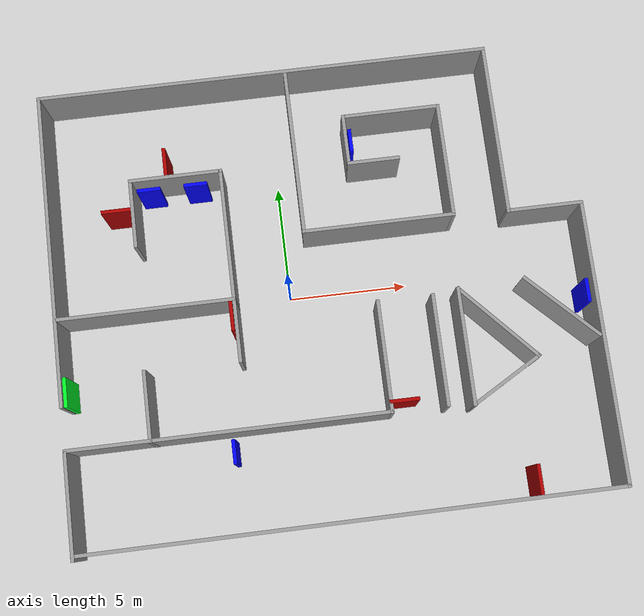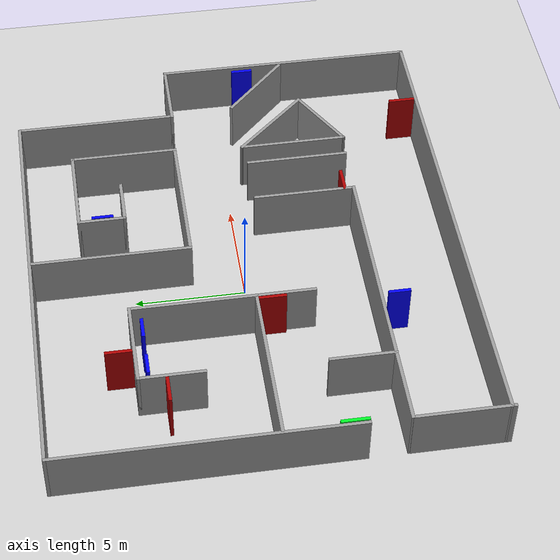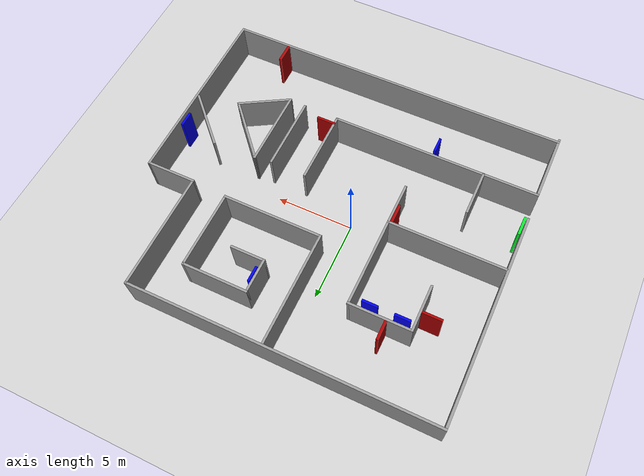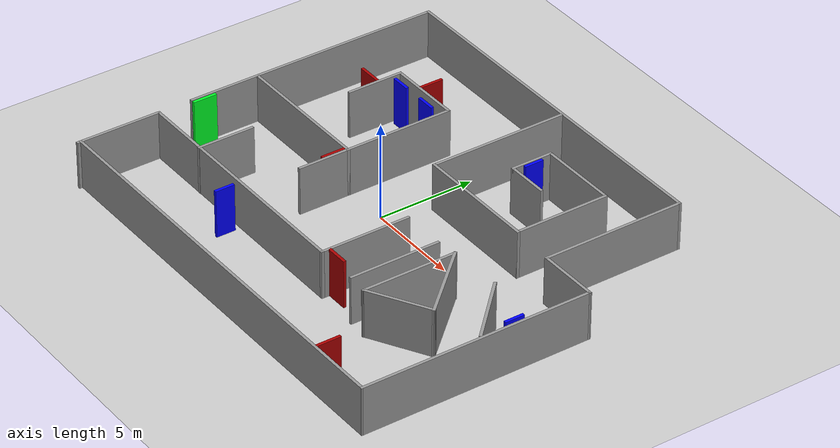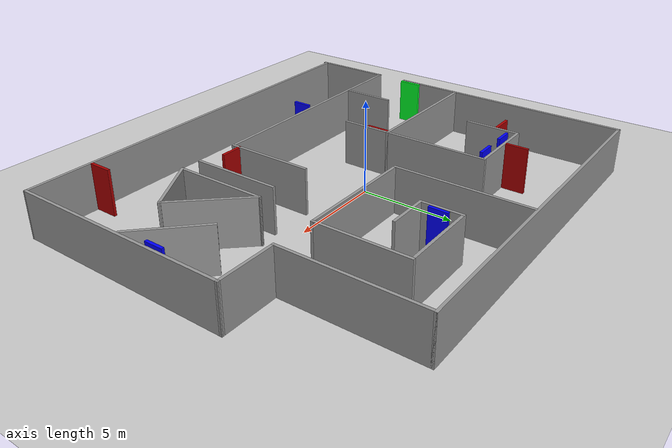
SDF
<sdf version="1.6">
 <world name="default">
  <light name="sun" type="directional">
   <pose>0 0 10 0 -0 0</pose>
   <diffuse>0.8 0.8 0.8 1</diffuse>
   <specular>0.1 0.1 0.1 1</specular>
   <attenuation>
    <range>1000</range>
    <constant>0.9</constant>
    <linear>0.01</linear>
    <quadratic>0.001</quadratic>
   </attenuation>
   <direction>-0.5 0.5 -1</direction>
  </light>
  <model name="ground_plane">
   <static>1</static>
   <link name="link">
    <collision name="collision">
     <geometry><plane><normal>0 0 1</normal><size>100 100</size></plane></geometry>
     <surface><friction><ode><mu>100</mu><mu2>50</mu2></ode></friction></surface>
    </collision>
    <visual name="visual">
     <cast_shadows>0</cast_shadows>
     <geometry><plane><normal>0 0 1</normal><size>100 100</size></plane></geometry>
     <material>
      <script><uri>file://media/materials/scripts/gazebo.material</uri><name>Gazebo/Grey</name></script>
     </material>
    </visual>
   </link>
  </model>
  <gravity>0 0 -9.8</gravity>
  <magnetic_field>6e-06 2.3e-05 -4.2e-05</magnetic_field>
  <atmosphere type="adiabatic"/>
  <physics name="default_physics" default="0" type="ode">
   <max_step_size>0.001</max_step_size>
   <real_time_factor>1</real_time_factor>
   <real_time_update_rate>1000</real_time_update_rate>
  </physics>
  <scene><ambient>0.4 0.4 0.4 1</ambient><background>0.7 0.7 0.7 1</background><shadows>1</shadows></scene>
  <spherical_coordinates>
   <surface_model>EARTH_WGS84</surface_model>
   <latitude_deg>0</latitude_deg>
   <longitude_deg>0</longitude_deg>
   <elevation>0</elevation>
   <heading_deg>0</heading_deg>
  </spherical_coordinates>
  <model name="202005_GRobotics_maze">
   <pose>1.43613 -0.11652 0 0 0 -1.57</pose>
   <link name="Wall_60">
    <collision name="Wall_60_Collision">
     <geometry><box><size>13.5 0.15 2.5</size></box></geometry>
     <pose>0 0 1.25 0 -0 0</pose>
    </collision>
    <visual name="Wall_60_Visual">
     <pose>0 0 1.25 0 -0 0</pose>
     <geometry><box><size>13.5 0.15 2.5</size></box></geometry>
     <material>
      <script><uri>file://media/materials/scripts/gazebo.material</uri><name>Gazebo/Grey</name></script>
      <ambient>1 1 1 1</ambient>
     </material>
    </visual>
    <pose>-3 -11.2249 0 0 -0 3.14159</pose>
   </link>
   <link name="Wall_61">
    <collision name="Wall_61_Collision">
     <geometry><box><size>4.4 0.15 2.5</size></box></geometry>
     <pose>0 0 1.25 0 -0 0</pose>
    </collision>
    <visual name="Wall_61_Visual">
     <pose>0 0 1.25 0 -0 0</pose>
     <geometry><box><size>4.4 0.15 2.5</size></box></geometry>
     <material>
      <script><uri>file://media/materials/scripts/gazebo.material</uri><name>Gazebo/Grey</name></script>
      <ambient>1 1 1 1</ambient>
     </material>
    </visual>
    <pose>7.7 -11.2249 0 0 -0 3.14159</pose>
   </link>
   <link name="Wall_11">
    <collision name="Wall_11_Collision">
     <geometry><box><size>6.5 0.15 2.5</size></box></geometry>
     <pose>0 0 1.25 0 -0 0</pose>
    </collision>
    <visual name="Wall_11_Visual">
     <pose>0 0 1.25 0 -0 0</pose>
     <geometry><box><size>6.5 0.15 2.5</size></box></geometry>
     <material>
      <script><uri>file://media/materials/scripts/gazebo.material</uri><name>Gazebo/Grey</name></script>
      <ambient>1 1 1 1</ambient>
     </material>
    </visual>
    <pose>-2.45813 2.62694 0 0 -0 1.5708</pose>
   </link>
   <link name="Wall_12">
    <collision name="Wall_12_Collision">
     <geometry><box><size>5 0.15 2.5</size></box></geometry>
     <pose>0 0 1.25 0 -0 0</pose>
    </collision>
    <visual name="Wall_12_Visual">
     <pose>0 0 1.25 0 -0 0</pose>
     <geometry><box><size>5 0.15 2.5</size></box></geometry>
     <material>
      <script><uri>file://media/materials/scripts/gazebo.material</uri><name>Gazebo/Grey</name></script>
      <ambient>1 1 1 1</ambient>
     </material>
    </visual>
    <pose>-4.88314 5.80194 0 0 -0 3.14159</pose>
   </link>
   <link name="Wall_14">
    <collision name="Wall_14_Collision">
     <geometry><box><size>4.25 0.15 2.5</size></box></geometry>
     <pose>0 0 1.25 0 -0 0</pose>
    </collision>
    <visual name="Wall_14_Visual">
     <pose>0 0 1.25 0 -0 0</pose>
     <geometry><box><size>4.25 0.15 2.5</size></box></geometry>
     <material>
      <script><uri>file://media/materials/scripts/gazebo.material</uri><name>Gazebo/Grey</name></script>
      <ambient>1 1 1 1</ambient>
     </material>
    </visual>
    <pose>-7.30814 3.75194 0 0 0 -1.5708</pose>
   </link>
   <link name="Wall_15">
    <collision name="Wall_15_Collision">
     <geometry><box><size>2.25 0.15 2.5</size></box></geometry>
     <pose>0 0 1.25 0 -0 0</pose>
    </collision>
    <visual name="Wall_15_Visual">
     <pose>0 0 1.25 0 -0 0</pose>
     <geometry><box><size>2.25 0.15 2.5</size></box></geometry>
     <material>
      <script><uri>file://media/materials/scripts/gazebo.material</uri><name>Gazebo/Grey</name></script>
      <ambient>1 1 1 1</ambient>
     </material>
    </visual>
    <pose>-6.25814 1.70194 0 0 -0 0</pose>
   </link>
   <link name="Wall_16">
    <collision name="Wall_16_Collision">
     <geometry><box><size>2.25 0.15 2.5</size></box></geometry>
     <pose>0 0 1.25 0 -0 0</pose>
    </collision>
    <visual name="Wall_16_Visual">
     <pose>0 0 1.25 0 -0 0</pose>
     <geometry><box><size>2.25 0.15 2.5</size></box></geometry>
     <material>
      <script><uri>file://media/materials/scripts/gazebo.material</uri><name>Gazebo/Grey</name></script>
      <ambient>1 1 1 1</ambient>
     </material>
    </visual>
    <pose>-5.20814 2.75194 0 0 -0 1.5708</pose>
   </link>
   <link name="Wall_18">
    <collision name="Wall_18_Collision">
     <geometry><box><size>7.5 0.15 2.5</size></box></geometry>
     <pose>0 0 1.25 0 -0 0</pose>
    </collision>
    <visual name="Wall_18_Visual">
     <pose>0 0 1.25 0 -0 0</pose>
     <geometry><box><size>7.5 0.15 2.5</size></box></geometry>
     <material>
      <script><uri>file://media/materials/scripts/gazebo.material</uri><name>Gazebo/Grey</name></script>
      <ambient>1 1 1 1</ambient>
     </material>
    </visual>
    <pose>0.07045 -7.45271 0 0 -0 1.5708</pose>
   </link>
   <link name="Wall_19">
    <collision name="Wall_19_Collision">
     <geometry><box><size>5.75 0.15 2.5</size></box></geometry>
     <pose>0 0 1.25 0 -0 0</pose>
    </collision>
    <visual name="Wall_19_Visual">
     <pose>0 0 1.25 0 -0 0</pose>
     <geometry><box><size>5.75 0.15 2.5</size></box></geometry>
     <material>
      <script><uri>file://media/materials/scripts/gazebo.material</uri><name>Gazebo/Grey</name></script>
      <ambient>1 1 1 1</ambient>
     </material>
    </visual>
    <pose>-2.72955 -3.77771 0 0 -0 3.14159</pose>
   </link>
   <link name="Wall_20">
    <collision name="Wall_20_Collision">
     <geometry><box><size>4 0.15 2.5</size></box></geometry>
     <pose>0 0 1.25 0 -0 0</pose>
    </collision>
    <visual name="Wall_20_Visual">
     <pose>0 0 1.25 0 -0 0</pose>
     <geometry><box><size>4 0.15 2.5</size></box></geometry>
     <material>
      <script><uri>file://media/materials/scripts/gazebo.material</uri><name>Gazebo/Grey</name></script>
      <ambient>1 1 1 1</ambient>
     </material>
    </visual>
    <pose>-5.52955 -5.70271 0 0 0 -1.5708</pose>
   </link>
   <link name="Wall_21">
    <collision name="Wall_21_Collision">
     <geometry><box><size>3 0.15 2.5</size></box></geometry>
     <pose>0 0 1.25 0 -0 0</pose>
    </collision>
    <visual name="Wall_21_Visual">
     <pose>0 0 1.25 0 -0 0</pose>
     <geometry><box><size>3 0.15 2.5</size></box></geometry>
     <material>
      <script><uri>file://media/materials/scripts/gazebo.material</uri><name>Gazebo/Grey</name></script>
      <ambient>1 1 1 1</ambient>
     </material>
    </visual>
    <pose>-4.10455 -7.62771 0 0 -0 0</pose>
   </link>
   <link name="Wall_23">
    <collision name="Wall_23_Collision">
     <geometry><box><size>13.5 0.15 2.5</size></box></geometry>
     <pose>0 0 1.25 0 -0 0</pose>
    </collision>
    <visual name="Wall_23_Visual">
     <pose>0 0 1.25 0 -0 0</pose>
     <geometry><box><size>13.5 0.15 2.5</size></box></geometry>
     <material>
      <script><uri>file://media/materials/scripts/gazebo.material</uri><name>Gazebo/Grey</name></script>
      <ambient>1 1 1 1</ambient>
     </material>
    </visual>
    <pose>5.4915 -4.53362 0 0 -0 1.5708</pose>
   </link>
   <link name="Wall_25">
    <collision name="Wall_25_Collision">
     <geometry><box><size>2.75 0.15 2.5</size></box></geometry>
     <pose>0 0 1.25 0 -0 0</pose>
    </collision>
    <visual name="Wall_25_Visual">
     <pose>0 0 1.25 0 -0 0</pose>
     <geometry><box><size>2.75 0.15 2.5</size></box></geometry>
     <material>
      <script><uri>file://media/materials/scripts/gazebo.material</uri><name>Gazebo/Grey</name></script>
      <ambient>1 1 1 1</ambient>
     </material>
    </visual>
    <pose>1.37045 -3.77771 0 0 -0 0</pose>
   </link>
   <link name="Wall_27">
    <collision name="Wall_27_Collision">
     <geometry><box><size>3 0.15 2.5</size></box></geometry>
     <pose>0 0 1.25 0 -0 0</pose>
    </collision>
    <visual name="Wall_27_Visual">
     <pose>0 0 1.25 0 -0 0</pose>
     <geometry><box><size>3 0.15 2.5</size></box></geometry>
     <material>
      <script><uri>file://media/materials/scripts/gazebo.material</uri><name>Gazebo/Grey</name></script>
      <ambient>1 1 1 1</ambient>
     </material>
    </visual>
    <pose>4.08027 -7.75634 0 0 -0 3.14159</pose>
   </link>
   <link name="Wall_3">
    <collision name="Wall_3_Collision">
     <geometry><box><size>22.5761 0.15 2.5</size></box></geometry>
     <pose>0 0 1.25 0 -0 0</pose>
    </collision>
    <visual name="Wall_3_Visual">
     <pose>0 0 1.25 0 -0 0</pose>
     <geometry><box><size>22.5761 0.15 2.5</size></box></geometry>
     <material>
      <script><uri>file://media/materials/scripts/gazebo.material</uri><name>Gazebo/Grey</name></script>
      <ambient>1 1 1 1</ambient>
     </material>
    </visual>
    <pose>9.63418 -0.011964 0 0 -0 1.57442</pose>
   </link>
   <link name="Wall_36">
    <collision name="Wall_36_Collision">
     <geometry><box><size>4.75 0.15 2.5</size></box></geometry>
     <pose>0 0 1.25 0 -0 0</pose>
    </collision>
    <visual name="Wall_36_Visual">
     <pose>0 0 1.25 0 -0 0</pose>
     <geometry><box><size>4.75 0.15 2.5</size></box></geometry>
     <material>
      <script><uri>file://media/materials/scripts/gazebo.material</uri><name>Gazebo/Grey</name></script>
      <ambient>1 1 1 1</ambient>
     </material>
    </visual>
    <pose>3.1915 2.14138 0 0 -0 3.14159</pose>
   </link>
   <link name="Wall_39">
    <collision name="Wall_39_Collision">
     <geometry><box><size>4.75 0.15 2.5</size></box></geometry>
     <pose>0 0 1.25 0 -0 0</pose>
    </collision>
    <visual name="Wall_39_Visual">
     <pose>0 0 1.25 0 -0 0</pose>
     <geometry><box><size>4.75 0.15 2.5</size></box></geometry>
     <material>
      <script><uri>file://media/materials/scripts/gazebo.material</uri><name>Gazebo/Grey</name></script>
      <ambient>1 1 1 1</ambient>
     </material>
    </visual>
    <pose>3.20483 4.44521 0 0 -0 3.14159</pose>
   </link>
   <link name="Wall_41">
    <collision name="Wall_41_Collision">
     <geometry><box><size>5 0.15 2.5</size></box></geometry>
     <pose>0 0 1.25 0 -0 0</pose>
    </collision>
    <visual name="Wall_41_Visual">
     <pose>0 0 1.25 0 -0 0</pose>
     <geometry><box><size>5 0.15 2.5</size></box></geometry>
     <material>
      <script><uri>file://media/materials/scripts/gazebo.material</uri><name>Gazebo/Grey</name></script>
      <ambient>1 1 1 1</ambient>
     </material>
    </visual>
    <pose>3.17809 5.52725 0 0 -0 3.14159</pose>
   </link>
   <link name="Wall_43">
    <collision name="Wall_43_Collision">
     <geometry><box><size>3.5 0.15 2.5</size></box></geometry>
     <pose>0 0 1.25 0 -0 0</pose>
    </collision>
    <visual name="Wall_43_Visual">
     <pose>0 0 1.25 0 -0 0</pose>
     <geometry><box><size>3.5 0.15 2.5</size></box></geometry>
     <material>
      <script><uri>file://media/materials/scripts/gazebo.material</uri><name>Gazebo/Grey</name></script>
      <ambient>1 1 1 1</ambient>
     </material>
    </visual>
    <pose>4.76559 6.97785 0 0 -0 2.0944</pose>
   </link>
   <link name="Wall_45">
    <collision name="Wall_45_Collision">
     <geometry><box><size>4.45087 0.15 2.5</size></box></geometry>
     <pose>0 0 1.25 0 -0 0</pose>
    </collision>
    <visual name="Wall_45_Visual">
     <pose>0 0 1.25 0 -0 0</pose>
     <geometry><box><size>4.45087 0.15 2.5</size></box></geometry>
     <material>
      <script><uri>file://media/materials/scripts/gazebo.material</uri><name>Gazebo/Grey</name></script>
      <ambient>1 1 1 1</ambient>
     </material>
    </visual>
    <pose>2.34059 6.97785 0 0 0 -2.40123</pose>
   </link>
   <link name="Wall_47">
    <collision name="Wall_47_Collision">
     <geometry><box><size>4 0.15 2.5</size></box></geometry>
     <pose>0 0 1.25 0 -0 0</pose>
    </collision>
    <visual name="Wall_47_Visual">
     <pose>0 0 1.25 0 -0 0</pose>
     <geometry><box><size>4 0.15 2.5</size></box></geometry>
     <material>
      <script><uri>file://media/materials/scripts/gazebo.material</uri><name>Gazebo/Grey</name></script>
      <ambient>1 1 1 1</ambient>
     </material>
    </visual>
    <pose>1.99697 9.70252 0 0 -0 0.785398</pose>
   </link>
   <link name="Wall_5">
    <collision name="Wall_5_Collision">
     <geometry><box><size>19.5 0.15 2.5</size></box></geometry>
     <pose>0 0 1.25 0 -0 0</pose>
    </collision>
    <visual name="Wall_5_Visual">
     <pose>0 0 1.25 0 -0 0</pose>
     <geometry><box><size>19.5 0.15 2.5</size></box></geometry>
     <material>
      <script><uri>file://media/materials/scripts/gazebo.material</uri><name>Gazebo/Grey</name></script>
      <ambient>1 1 1 1</ambient>
     </material>
    </visual>
    <pose>-9.67513 -1.54994 0 0 -0 1.5708</pose>
   </link>
   <link name="Wall_50">
    <collision name="Wall_50_Collision">
     <geometry><box><size>7.5 0.15 2.5</size></box></geometry>
     <pose>0 0 1.25 0 -0 0</pose>
    </collision>
    <visual name="Wall_50_Visual">
     <pose>0 0 1.25 0 -0 0</pose>
     <geometry><box><size>7.5 0.15 2.5</size></box></geometry>
     <material>
      <script><uri>file://media/materials/scripts/gazebo.material</uri><name>Gazebo/Grey</name></script>
      <ambient>1 1 1 1</ambient>
     </material>
    </visual>
    <pose>-6.00014 8.12506 0 0 -0 0</pose>
   </link>
   <link name="Wall_52">
    <collision name="Wall_52_Collision">
     <geometry><box><size>3.25 0.15 2.5</size></box></geometry>
     <pose>0 0 1.25 0 -0 0</pose>
    </collision>
    <visual name="Wall_52_Visual">
     <pose>0 0 1.25 0 -0 0</pose>
     <geometry><box><size>3.25 0.15 2.5</size></box></geometry>
     <material>
      <script><uri>file://media/materials/scripts/gazebo.material</uri><name>Gazebo/Grey</name></script>
      <ambient>1 1 1 1</ambient>
     </material>
    </visual>
    <pose>-2.32513 9.67506 0 0 -0 1.5708</pose>
   </link>
   <link name="Wall_53">
    <collision name="Wall_53_Collision">
     <geometry><box><size>12.0687 0.15 2.5</size></box></geometry>
     <pose>0 0 1.25 0 -0 0</pose>
    </collision>
    <visual name="Wall_53_Visual">
     <pose>0 0 1.25 0 -0 0</pose>
     <geometry><box><size>12.0687 0.15 2.5</size></box></geometry>
     <material>
      <script><uri>file://media/materials/scripts/gazebo.material</uri><name>Gazebo/Grey</name></script>
      <ambient>1 1 1 1</ambient>
     </material>
    </visual>
    <pose>3.63418 11.213 0 0 0 -0.002018</pose>
   </link>
   <link name="Wall_9">
    <collision name="Wall_9_Collision">
     <geometry><box><size>7.25 0.15 2.5</size></box></geometry>
     <pose>0 0 1.25 0 -0 0</pose>
    </collision>
    <visual name="Wall_9_Visual">
     <pose>0 0 1.25 0 -0 0</pose>
     <geometry><box><size>7.25 0.15 2.5</size></box></geometry>
     <material>
      <script><uri>file://media/materials/scripts/gazebo.material</uri><name>Gazebo/Grey</name></script>
      <ambient>1 1 1 1</ambient>
     </material>
    </visual>
    <pose>-6.00814 -0.548064 0 0 -0 0</pose>
   </link>
   <static>1</static>
  </model>
  <model name="wall_green">
   <pose>-9.5904 -3.24586 0 0 -0 1.57</pose>
   <link name="Wall_0">
    <collision name="Wall_0_Collision">
     <geometry><box><size>1.25 0.15 2.5</size></box></geometry>
     <pose>0 0 1.25 0 -0 0</pose>
    </collision>
    <visual name="Wall_0_Visual">
     <pose>0 0 1.25 0 -0 0</pose>
     <geometry><box><size>1.25 0.15 2.5</size></box></geometry>
     <material>
      <script><uri>file://media/materials/scripts/gazebo.material</uri><name>Gazebo/Grey</name></script>
      <ambient>0 1 0.14902 1</ambient>
     </material>
    </visual>
   </link>
   <static>1</static>
  </model>
  <model name="wall_blue">
   <pose>-2.97306 -6.45436 0 0 -0 1.57</pose>
   <link name="Wall_0">
    <collision name="Wall_0_Collision">
     <geometry><box><size>1 0.15 2.5</size></box></geometry>
     <pose>0 0 1.25 0 -0 0</pose>
    </collision>
    <visual name="Wall_0_Visual">
     <pose>0 0 1.25 0 -0 0</pose>
     <geometry><box><size>1 0.15 2.5</size></box></geometry>
     <material>
      <script><uri>file://media/materials/scripts/gazebo.material</uri><name>Gazebo/Grey</name></script>
      <ambient>0 0 1 1</ambient>
     </material>
    </visual>
   </link>
   <static>1</static>
  </model>
  <model name="wall_blue_clone">
   <pose>12.3151 -1.56341 0 0 -0 1.57</pose>
   <link name="Wall_0">
    <collision name="Wall_0_Collision">
     <geometry><box><size>1 0.15 2.5</size></box></geometry>
     <pose>0 0 1.25 0 -0 0</pose>
    </collision>
    <visual name="Wall_0_Visual">
     <pose>0 0 1.25 0 -0 0</pose>
     <geometry><box><size>1 0.15 2.5</size></box></geometry>
     <material>
      <script><uri>file://media/materials/scripts/gazebo.material</uri><name>Gazebo/Grey</name></script>
      <ambient>0 0 1 1</ambient>
     </material>
    </visual>
   </link>
   <static>1</static>
  </model>
  <model name="wall_blue_clone_0">
   <pose>3.32359 6.09731 0 0 -0 1.57</pose>
   <link name="Wall_0">
    <collision name="Wall_0_Collision">
     <geometry><box><size>1 0.15 2.5</size></box></geometry>
     <pose>0 0 1.25 0 -0 0</pose>
    </collision>
    <visual name="Wall_0_Visual">
     <pose>0 0 1.25 0 -0 0</pose>
     <geometry><box><size>1 0.15 2.5</size></box></geometry>
     <material>
      <script><uri>file://media/materials/scripts/gazebo.material</uri><name>Gazebo/Grey</name></script>
      <ambient>0 0 1 1</ambient>
     </material>
    </visual>
   </link>
   <static>1</static>
  </model>
  <model name="wall_blue_0">
   <pose>-3.45639 4.93493 0 0 -0 0</pose>
   <link name="Wall_0">
    <collision name="Wall_0_Collision">
     <geometry><box><size>1 0.15 2.5</size></box></geometry>
     <pose>0 0 1.25 0 -0 0</pose>
    </collision>
    <visual name="Wall_0_Visual">
     <pose>0 0 1.25 0 -0 0</pose>
     <geometry><box><size>1 0.15 2.5</size></box></geometry>
     <material>
      <script><uri>file://media/materials/scripts/gazebo.material</uri><name>Gazebo/Grey</name></script>
      <ambient>0 0 1 1</ambient>
     </material>
    </visual>
   </link>
   <static>1</static>
  </model>
  <model name="wall_blue_0_clone">
   <pose>-5.44523 4.93169 0 0 -0 0</pose>
   <link name="Wall_0">
    <collision name="Wall_0_Collision">
     <geometry><box><size>1 0.15 2.5</size></box></geometry>
     <pose>0 0 1.25 0 -0 0</pose>
    </collision>
    <visual name="Wall_0_Visual">
     <pose>0 0 1.25 0 -0 0</pose>
     <geometry><box><size>1 0.15 2.5</size></box></geometry>
     <material>
      <script><uri>file://media/materials/scripts/gazebo.material</uri><name>Gazebo/Grey</name></script>
      <ambient>0 0 1 1</ambient>
     </material>
    </visual>
   </link>
   <static>1</static>
  </model>
  <model name="wall_red">
   <pose>4.14255 -5.20392 0 0 -0 0</pose>
   <link name="Wall_0">
    <collision name="Wall_0_Collision">
     <geometry><box><size>1.25 0.15 2.5</size></box></geometry>
     <pose>0 0 1.25 0 -0 0</pose>
    </collision>
    <visual name="Wall_0_Visual">
     <pose>0 0 1.25 0 -0 0</pose>
     <geometry><box><size>1.25 0.15 2.5</size></box></geometry>
     <material>
      <script><uri>file://media/materials/scripts/gazebo.material</uri><name>Gazebo/Grey</name></script>
      <ambient>0.666667 0 0 1</ambient>
     </material>
    </visual>
   </link>
   <static>1</static>
  </model>
  <model name="wall_red_clone">
   <pose>-6.90198 4.17111 0 0 -0 0</pose>
   <link name="Wall_0">
    <collision name="Wall_0_Collision">
     <geometry><box><size>1.25 0.15 2.5</size></box></geometry>
     <pose>0 0 1.25 0 -0 0</pose>
    </collision>
    <visual name="Wall_0_Visual">
     <pose>0 0 1.25 0 -0 0</pose>
     <geometry><box><size>1.25 0.15 2.5</size></box></geometry>
     <material>
      <script><uri>file://media/materials/scripts/gazebo.material</uri><name>Gazebo/Grey</name></script>
      <ambient>0.666667 0 0 1</ambient>
     </material>
    </visual>
   </link>
   <static>1</static>
  </model>
  <model name="wall_red_clone_0">
   <pose>-4.65793 6.06655 0 0 -0 1.57</pose>
   <link name="Wall_0">
    <collision name="Wall_0_Collision">
     <geometry><box><size>1.25 0.15 2.5</size></box></geometry>
     <pose>0 0 1.25 0 -0 0</pose>
    </collision>
    <visual name="Wall_0_Visual">
     <pose>0 0 1.25 0 -0 0</pose>
     <geometry><box><size>1.25 0.15 2.5</size></box></geometry>
     <material>
      <script><uri>file://media/materials/scripts/gazebo.material</uri><name>Gazebo/Grey</name></script>
      <ambient>0.666667 0 0 1</ambient>
     </material>
    </visual>
   </link>
   <static>1</static>
  </model>
  <model name="wall_red_clone_0_clone">
   <pose>9.13148 -9.02056 0 0 -0 1.57</pose>
   <link name="Wall_0">
    <collision name="Wall_0_Collision">
     <geometry><box><size>1.25 0.15 2.5</size></box></geometry>
     <pose>0 0 1.25 0 -0 0</pose>
    </collision>
    <visual name="Wall_0_Visual">
     <pose>0 0 1.25 0 -0 0</pose>
     <geometry><box><size>1.25 0.15 2.5</size></box></geometry>
     <material>
      <script><uri>file://media/materials/scripts/gazebo.material</uri><name>Gazebo/Grey</name></script>
      <ambient>0.666667 0 0 1</ambient>
     </material>
    </visual>
   </link>
   <static>1</static>
  </model>
  <model name="wall_red_clone_0_clone_clone">
   <pose>-2.50441 -0.887318 0 0 -0 1.57</pose>
   <link name="Wall_0">
    <collision name="Wall_0_Collision">
     <geometry><box><size>1.25 0.15 2.5</size></box></geometry>
     <pose>0 0 1.25 0 -0 0</pose>
    </collision>
    <visual name="Wall_0_Visual">
     <pose>0 0 1.25 0 -0 0</pose>
     <geometry><box><size>1.25 0.15 2.5</size></box></geometry>
     <material>
      <script><uri>file://media/materials/scripts/gazebo.material</uri><name>Gazebo/Grey</name></script>
      <ambient>0.666667 0 0 1</ambient>
     </material>
    </visual>
   </link>
   <static>1</static>
  </model>
  <audio><device>default</device></audio>
 </world>
</sdf>
